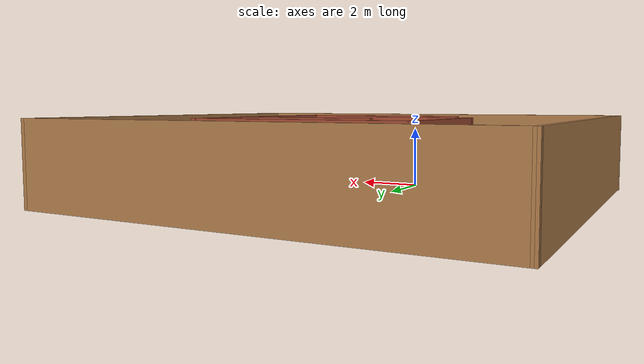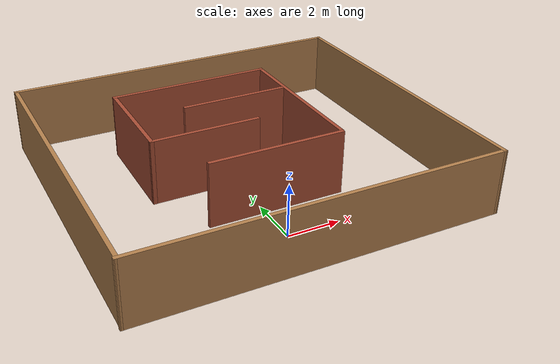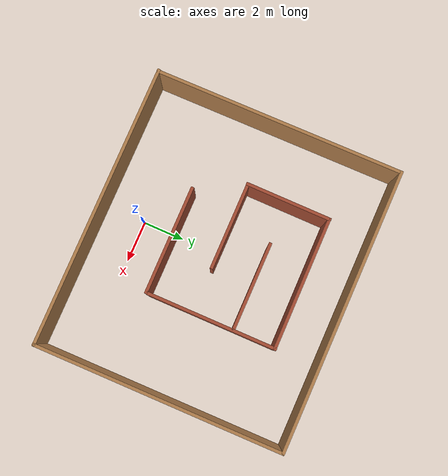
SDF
<?xml version='1.0'?>
<sdf version='1.6'>
  <model name='world1'>
    <pose frame=''>0.342052 4.06473 0 0 -0 0</pose>
    <link name='Wall_12'>
      <collision name='Wall_12_Collision'>
        <geometry>
          <box>
            <size>6.45003 0.15 2.5</size>
          </box>
        </geometry>
        <pose frame=''>0 0 1.25 0 -0 0</pose>
      </collision>
      <visual name='Wall_12_Visual'>
        <pose frame=''>0 0 1.25 0 -0 0</pose>
        <geometry>
          <box>
            <size>6.45003 0.15 2.5</size>
          </box>
        </geometry>
        <material>
          <script>
            <uri>file://media/materials/scripts/gazebo.material</uri>
            <name>Gazebo/Bricks</name>
          </script>
          <ambient>1 1 1 1</ambient>
        </material>
        <meta>
          <layer>0</layer>
        </meta>
      </visual>
      <pose frame=''>-0.412052 3.85527 0 0 -0 -3.13842</pose>
    </link>
    <link name='Wall_13'>
      <collision name='Wall_13_Collision'>
        <geometry>
          <box>
            <size>4.16005 0.15 2.5</size>
          </box>
        </geometry>
        <pose frame=''>0 0 1.25 0 -0 0</pose>
      </collision>
      <visual name='Wall_13_Visual'>
        <pose frame=''>0 0 1.25 0 -0 0</pose>
        <geometry>
          <box>
            <size>4.16005 0.15 2.5</size>
          </box>
        </geometry>
        <material>
          <script>
            <uri>file://media/materials/scripts/gazebo.material</uri>
            <name>Gazebo/Bricks</name>
          </script>
          <ambient>1 1 1 1</ambient>
        </material>
        <meta>
          <layer>0</layer>
        </meta>
      </visual>
      <pose frame=''>-3.57205 1.85027 0 0 -0 -1.57578</pose>
    </link>
    <link name='Wall_14'>
      <collision name='Wall_14_Collision'>
        <geometry>
          <box>
            <size>4.25 0.15 2.5</size>
          </box>
        </geometry>
        <pose frame=''>0 0 1.25 0 -0 0</pose>
      </collision>
      <visual name='Wall_14_Visual'>
        <pose frame=''>0 0 1.25 0 -0 0</pose>
        <geometry>
          <box>
            <size>4.25 0.15 2.5</size>
          </box>
        </geometry>
        <material>
          <script>
            <uri>file://media/materials/scripts/gazebo.material</uri>
            <name>Gazebo/Bricks</name>
          </script>
          <ambient>1 1 1 1</ambient>
        </material>
        <meta>
          <layer>0</layer>
        </meta>
      </visual>
      <pose frame=''>-1.53205 -0.144725 0 0 -0 0</pose>
    </link>
    <link name='Wall_17'>
      <collision name='Wall_17_Collision'>
        <geometry>
          <box>
            <size>4.25 0.15 2.5</size>
          </box>
        </geometry>
        <pose frame=''>0 0 1.25 0 -0 0</pose>
      </collision>
      <visual name='Wall_17_Visual'>
        <pose frame=''>0 0 1.25 0 -0 0</pose>
        <geometry>
          <box>
            <size>4.25 0.15 2.5</size>
          </box>
        </geometry>
        <material>
          <script>
            <uri>file://media/materials/scripts/gazebo.material</uri>
            <name>Gazebo/Bricks</name>
          </script>
          <ambient>1 1 1 1</ambient>
        </material>
        <meta>
          <layer>0</layer>
        </meta>
      </visual>
      <pose frame=''>0.587949 1.84527 0 0 -0 0</pose>
    </link>
    <link name='Wall_20'>
      <collision name='Wall_20_Collision'>
        <geometry>
          <box>
            <size>13.7458 0.15 2.5</size>
          </box>
        </geometry>
        <pose frame=''>0 0 1.25 0 -0 0</pose>
      </collision>
      <visual name='Wall_20_Visual'>
        <pose frame=''>0 0 1.25 0 -0 0</pose>
        <geometry>
          <box>
            <size>13.7458 0.15 2.5</size>
          </box>
        </geometry>
        <material>
          <script>
            <uri>file://media/materials/scripts/gazebo.material</uri>
            <name>Gazebo/Wood</name>
          </script>
          <ambient>1 1 1 1</ambient>
        </material>
        <meta>
          <layer>0</layer>
        </meta>
      </visual>
      <pose frame=''>-0.030495 5.99936 0 0 -0 -0.00225</pose>
    </link>
    <link name='Wall_21'>
      <collision name='Wall_21_Collision'>
        <geometry>
          <box>
            <size>12.1491 0.15 2.5</size>
          </box>
        </geometry>
        <pose frame=''>0 0 1.25 0 -0 0</pose>
      </collision>
      <visual name='Wall_21_Visual'>
        <pose frame=''>0 0 1.25 0 -0 0</pose>
        <geometry>
          <box>
            <size>12.1491 0.15 2.5</size>
          </box>
        </geometry>
        <material>
          <script>
            <uri>file://media/materials/scripts/gazebo.material</uri>
            <name>Gazebo/Wood</name>
          </script>
          <ambient>1 1 1 1</ambient>
        </material>
        <meta>
          <layer>0</layer>
        </meta>
      </visual>
      <pose frame=''>6.81329 -0.015312 0 0 -0 -1.56825</pose>
    </link>
    <link name='Wall_22'>
      <collision name='Wall_22_Collision'>
        <geometry>
          <box>
            <size>13.7458 0.15 2.5</size>
          </box>
        </geometry>
        <pose frame=''>0 0 1.25 0 -0 0</pose>
      </collision>
      <visual name='Wall_22_Visual'>
        <pose frame=''>0 0 1.25 0 -0 0</pose>
        <geometry>
          <box>
            <size>13.7458 0.15 2.5</size>
          </box>
        </geometry>
        <material>
          <script>
            <uri>file://media/materials/scripts/gazebo.material</uri>
            <name>Gazebo/Wood</name>
          </script>
          <ambient>1 1 1 1</ambient>
        </material>
        <meta>
          <layer>0</layer>
        </meta>
      </visual>
      <pose frame=''>9.5e-05 -5.99939 0 0 -0 3.13934</pose>
    </link>
    <link name='Wall_23'>
      <collision name='Wall_23_Collision'>
        <geometry>
          <box>
            <size>12.1489 0.15 2.5</size>
          </box>
        </geometry>
        <pose frame=''>0 0 1.25 0 -0 0</pose>
      </collision>
      <visual name='Wall_23_Visual'>
        <pose frame=''>0 0 1.25 0 -0 0</pose>
        <geometry>
          <box>
            <size>12.1489 0.15 2.5</size>
          </box>
        </geometry>
        <material>
          <script>
            <uri>file://media/materials/scripts/gazebo.material</uri>
            <name>Gazebo/Wood</name>
          </script>
          <ambient>1 1 1 1</ambient>
        </material>
        <meta>
          <layer>0</layer>
        </meta>
      </visual>
      <pose frame=''>-6.79781 0.015278 0 0 -0 1.5759</pose>
    </link>
    <link name='Wall_4'>
      <collision name='Wall_4_Collision'>
        <geometry>
          <box>
            <size>5.25 0.15 2.5</size>
          </box>
        </geometry>
        <pose frame=''>0 0 1.25 0 -0 0</pose>
      </collision>
      <visual name='Wall_4_Visual'>
        <pose frame=''>0 0 1.25 0 -0 0</pose>
        <geometry>
          <box>
            <size>5.25 0.15 2.5</size>
          </box>
        </geometry>
        <material>
          <script>
            <uri>file://media/materials/scripts/gazebo.material</uri>
            <name>Gazebo/Bricks</name>
          </script>
          <ambient>1 1 1 1</ambient>
        </material>
        <meta>
          <layer>0</layer>
        </meta>
      </visual>
      <pose frame=''>0.157948 -2.38472 0 0 -0 0</pose>
    </link>
    <link name='Wall_7'>
      <collision name='Wall_7_Collision'>
        <geometry>
          <box>
            <size>6.32001 0.15 2.5</size>
          </box>
        </geometry>
        <pose frame=''>0 0 1.25 0 -0 0</pose>
      </collision>
      <visual name='Wall_7_Visual'>
        <pose frame=''>0 0 1.25 0 -0 0</pose>
        <geometry>
          <box>
            <size>6.32001 0.15 2.5</size>
          </box>
        </geometry>
        <material>
          <script>
            <uri>file://media/materials/scripts/gazebo.material</uri>
            <name>Gazebo/Bricks</name>
          </script>
          <ambient>1 1 1 1</ambient>
        </material>
        <meta>
          <layer>0</layer>
        </meta>
      </visual>
      <pose frame=''>2.73295 0.790275 0 0 -0 1.56918</pose>
    </link>
    <static>1</static>
  </model>
</sdf>
